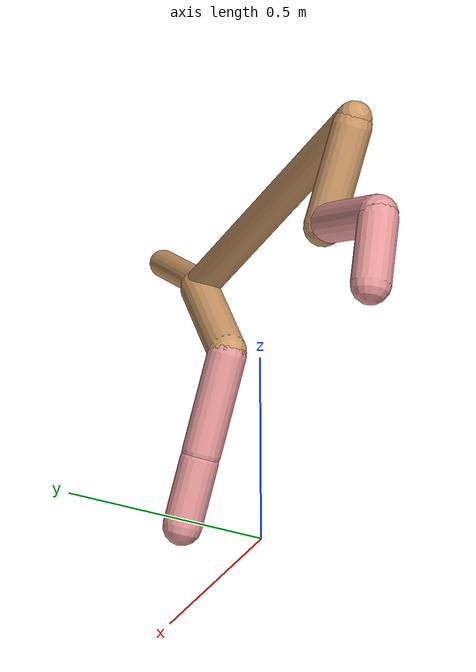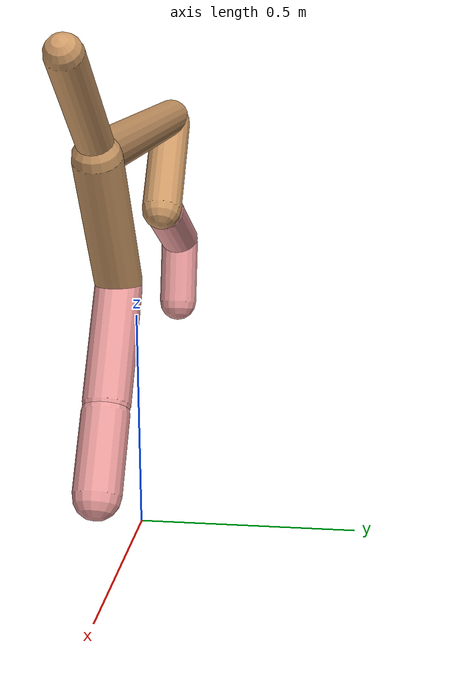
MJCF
<mujoco model="cheetah">
  <compiler angle="radian" coordinate="local" inertiafromgeom="true" settotalmass="14" />
  <default>
    <joint armature=".1" damping=".01" limited="true" solimplimit="0 .8 .03" solreflimit=".02 1" stiffness="8" />
    <geom conaffinity="0" condim="3" contype="1" friction="0.8 .1 .1" rgba="0.8 0.6 .4 1" solimp="0.0 0.8 0.01" solref="0.02 1" />
    <motor ctrllimited="true" ctrlrange="-1 1" />
  </default>
  <size nstack="300000" nuser_geom="1" />
  <option gravity="0 0 -9.81" timestep="0.01" />
  <worldbody>
    <body name="torso" pos="0.0 0.0 0.8985623472798498">
      <joint armature="0" axis="1 0 0" damping="0" limited="false" name="ignorex" pos="0 0 0" stiffness="0" type="slide" />
      <joint armature="0" axis="0 0 1" damping="0" limited="false" name="ignorez" pos="0 0 0" stiffness="0" type="slide" />
      <joint armature="0" axis="0 1 0" damping="0" limited="false" name="ignorey" pos="0 0 0" stiffness="0" type="hinge" />
      <geom fromto="-0.5 0.0 0.0 0.34407606790763556 0.0 0.0" name="torso" size="0.043822805405088885" type="capsule" />
      <geom axisangle="0 1 0 .87" name="head" pos="0.44407606790763554 0.0 0.1" size="0.03660232702452284 0.15" type="capsule" />

      <body name="bthigh" pos="-.5 0 0">
        <joint axis="0 1 0" damping="6" name="bthigh" pos="0 0 0" range="-.52 1.05" stiffness="240" type="hinge" />
        <geom axisangle="0 1 0 -3.8" name="bthigh" pos="0.0876731768287671 0.0 -0.11397512987739722" size="0.049081302040812944 0.12478250678394742" type="capsule" />
        <body name="bshin" pos="0.1353463536575342 0.0 -0.21795025975479443">
          <joint axis="0 1 0" damping="4.5" name="bshin" pos="0 0 0" range="-.785 .785" stiffness="180" type="hinge" />
          <geom axisangle="0 1 0 -2.03" name="bshin" pos="-0.12129337000038579 0.0 -0.06064668500019289" rgba="0.9 0.6 0.6 1" size="0.049081302040812944 0.12908535184546285" type="capsule" />
          <body name="bfoot" pos="-0.24258674000077157 0.0 -0.12129337000038579">
            <joint axis="0 1 0" damping="3" name="bfoot" pos="0 0 0" range="-.4 .785" stiffness="120" type="hinge" />
            <geom axisangle="0 1 0 -.27" name="bfoot" pos="0.026127422281653594 0.0 -0.08447866537734663" rgba="0.9 0.6 0.6 1" size="0.049081302040812944 0.08089348715649006" type="capsule" />
            <inertial mass="10" />
          </body>
        </body>
      </body>
      <body name="fthigh" pos="0.34407606790763556 0.0 0.0">
        <joint axis="0 1 0" damping="4.5" name="fthigh" pos="0 0 0" range="-1.5 0.8" stiffness="180" type="hinge" />
        <geom axisangle="0 1 0 .52" name="fthigh" pos="-0.08391906401959301 0.0 -0.14386125260501656" size="0.0499276146090729 0.16062425961110882" type="capsule" />
        <body name="fshin" pos="-0.16783812803918602 0.0 -0.2877225052100331">
          <joint axis="0 1 0" damping="3" name="fshin" pos="0 0 0" range="-1.2 1.1" stiffness="120" type="hinge" />
          <geom axisangle="0 1 0 -.6" name="fshin" pos="0.07789035161113035 0.0 -0.10784817915387278" rgba="0.9 0.6 0.6 1" size="0.0499276146090729 0.12801632720885364" type="capsule" />
          <body name="ffoot" pos="0.1557807032222607 0.0 -0.21569635830774556">
            <joint axis="0 1 0" damping="1.5" name="ffoot" pos="0 0 0" range="-3.1 -0.3" stiffness="60" type="hinge" />
            <geom axisangle="0 1 0 -.6" name="ffoot" pos="0.052862120046906304 0.0 -0.08222996451740981" rgba="0.9 0.6 0.6 1" size="0.0499276146090729 0.08453908400584675" type="capsule" />
            <inertial mass="10" />
          </body>
        </body>
      </body>
    </body>
  </worldbody>
  <actuator>
    <motor gear="120" joint="bthigh" name="bthigh" />
    <motor gear="90" joint="bshin" name="bshin" />
    <motor gear="60" joint="bfoot" name="bfoot" />
    <motor gear="120" joint="fthigh" name="fthigh" />
    <motor gear="60" joint="fshin" name="fshin" />
    <motor gear="30" joint="ffoot" name="ffoot" />
  </actuator>
</mujoco>
